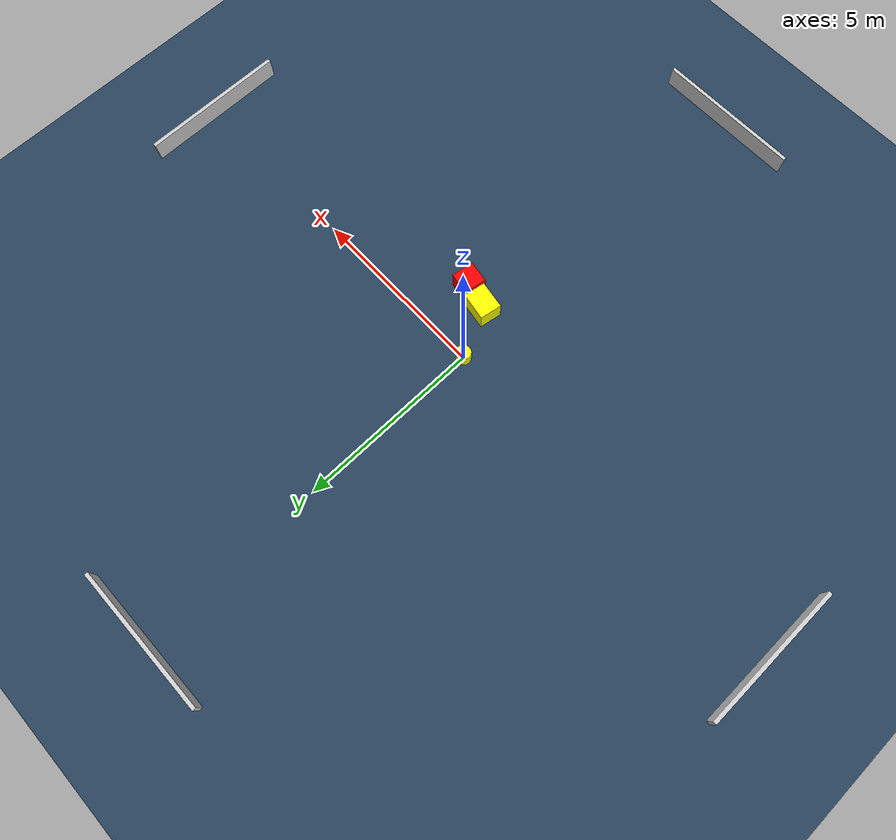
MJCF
<?xml version="1.0" ?>
<mujoco model="generated_environment">
  <option timestep="0.01" integrator="RK4" cone="elliptic"/>
  <default>
    <geom density="1"/>
  </default>
  <asset>
    <texture builtin="gradient" height="3072" name="skybox" rgb1="0.3 0.5 0.7" rgb2="0 0 0" type="skybox" width="512"/>
    <texture builtin="checker" height="300" name="groundplane" rgb1="0.2 0.3 0.4" rgb2="0.1 0.2 0.3" type="2d" width="300"/>
    <material name="groundplane" reflectance="0.2" texrepeat="5 5" texture="groundplane"/>
  </asset>
  <worldbody>
    <light dir="0 0 -1" directional="true" pos="0 0 1.5"/>
    <geom condim="3" friction="0.5 0.005 0.001" material="groundplane" name="floor" pos="0 0 0" size="0 0 0.05" type="plane"/>
    <body name="walls">
      <geom name="wall_1" condim="4" pos="-10.0 0.0 0.3" rgba="0.800000011920929 0.800000011920929 0.800000011920929 1.0" size="0.05 2.0 0.3" type="box"/>
      <geom name="wall_2" condim="4" pos="10.0 0.0 0.3" rgba="0.800000011920929 0.800000011920929 0.800000011920929 1.0" size="0.05 2.0 0.3" type="box"/>
      <geom name="wall_3" condim="4" pos="0.0 -10.0 0.3" rgba="0.800000011920929 0.800000011920929 0.800000011920929 1.0" size="2.0 0.05 0.3" type="box"/>
      <geom name="wall_4" condim="4" pos="0.0 10.0 0.3" rgba="0.800000011920929 0.800000011920929 0.800000011920929 1.0" size="2.0 0.05 0.3" type="box"/>
    </body>
    <body name="robot">
      <joint name="joint_x" type="slide" pos="0 0 0" axis="1 0 0"/>
      <joint name="joint_y" type="slide" pos="0 0 0" axis="0 1 0"/>
      <geom name="robot" type="cylinder" pos="0.0 0.0 0.2" size="0.2 0.2 0.0" mass="5.0" friction="1.0 0.005 0.0001" condim="4" rgba="1.0 1.0 0.0 1.0"/>
    </body>
    <body name="obstacle_1_movable">
      <geom name="obstacle_1_movable" condim="4" pos="0.6252479261169512 -1.2623224278117586 0.3" euler="0 0 260.36924550230265" friction="0.0 0.005 0.001" rgba="1.0 1.0 0.0 1.0" size="0.29812479861758495 0.3773106293409065 0.3" type="box" mass="0.1"/>
      <joint type="free"/>
    </body>
    <body name="obstacle_2_static">
      <geom name="obstacle_2_static" condim="4" pos="1.32452122104183 -1.4502785908950047 0.3" euler="0 0 80.78457825112656" friction="0.0 0.005 0.001" rgba="1.0 0.0 0.0 1.0" size="0.3059573837254529 0.2947768391933895 0.3" type="box"/>
    </body>
  </worldbody>
  <actuator>
    <motor name="actuator_x" joint="joint_x" gear="1" ctrlrange="-1 1"/>
    <motor name="actuator_y" joint="joint_y" gear="1" ctrlrange="-1 1"/>
  </actuator>
</mujoco>
